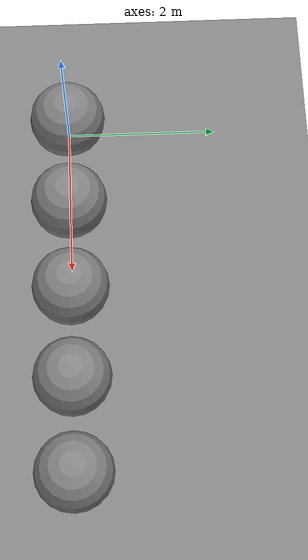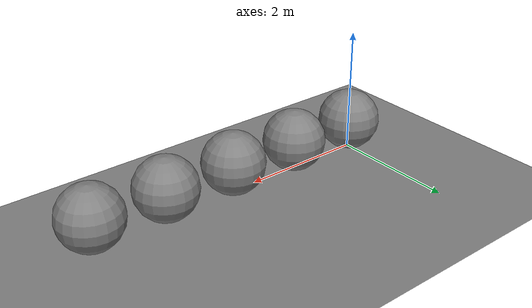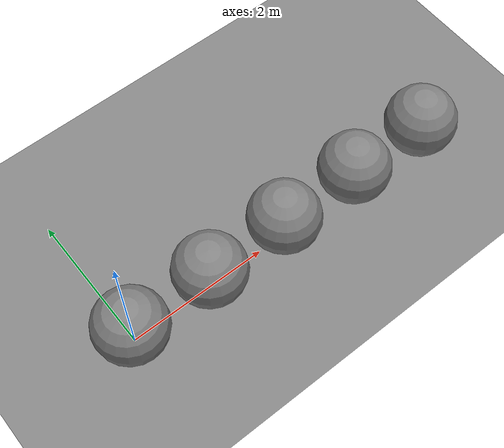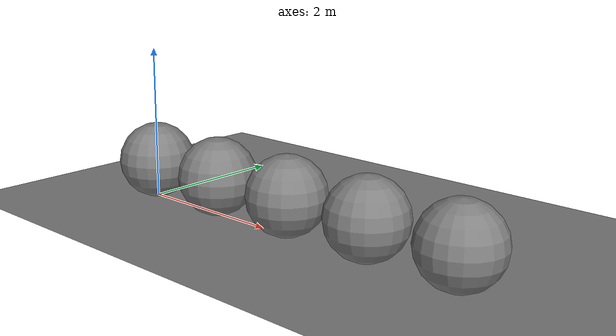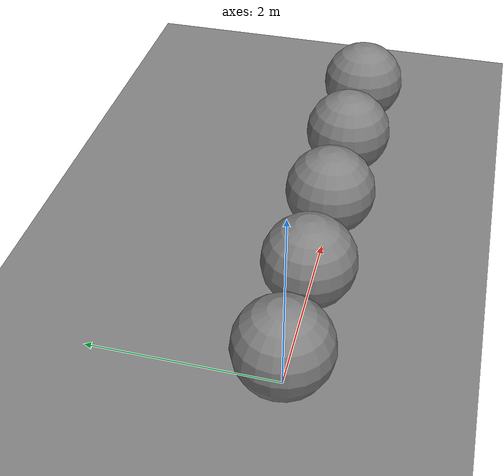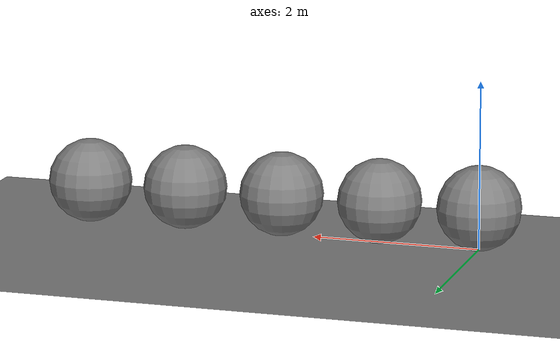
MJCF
<mujoco model="scale_5">
            <option gravity="0 0 -9.81" timestep="0.001"/>
            <worldbody>
                <geom name="floor" type="plane" size="10 10 0.1"/>
                <body name="s0" pos="0 0 0.5"><joint type="free"/><geom type="sphere" size="0.5" mass="1"/></body>
                <body name="s1" pos="1.2 0 0.5"><joint type="free"/><geom type="sphere" size="0.5" mass="1"/></body>
                <body name="s2" pos="2.4 0 0.5"><joint type="free"/><geom type="sphere" size="0.5" mass="1"/></body>
                <body name="s3" pos="3.6 0 0.5"><joint type="free"/><geom type="sphere" size="0.5" mass="1"/></body>
                <body name="s4" pos="4.8 0 0.5"><joint type="free"/><geom type="sphere" size="0.5" mass="1"/></body>
            </worldbody>
        </mujoco>
